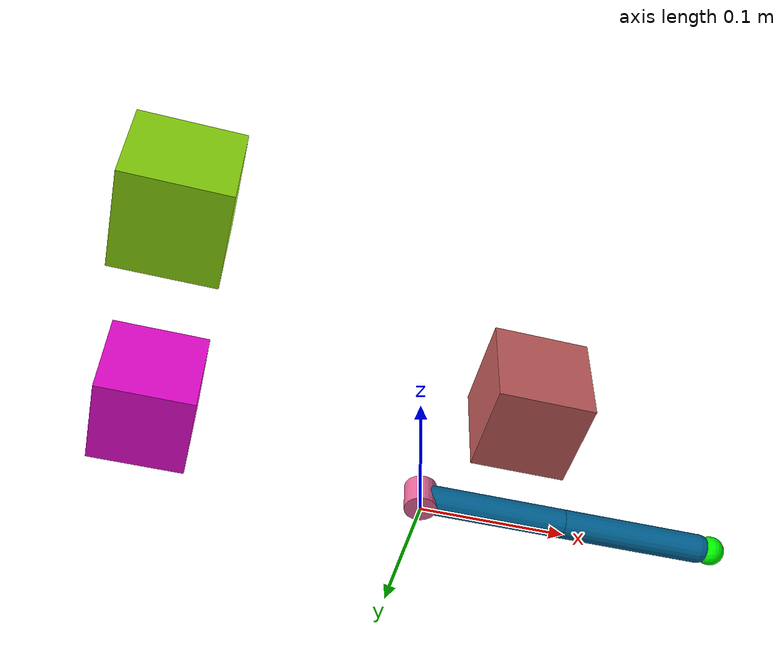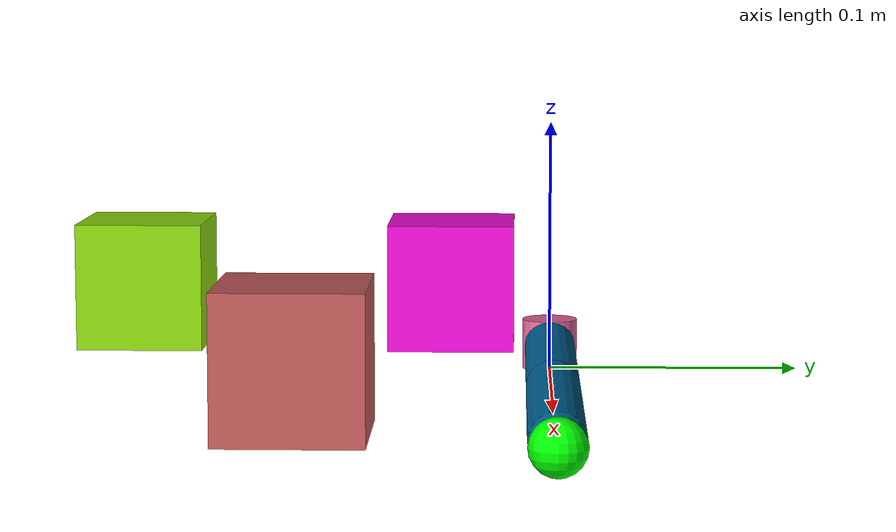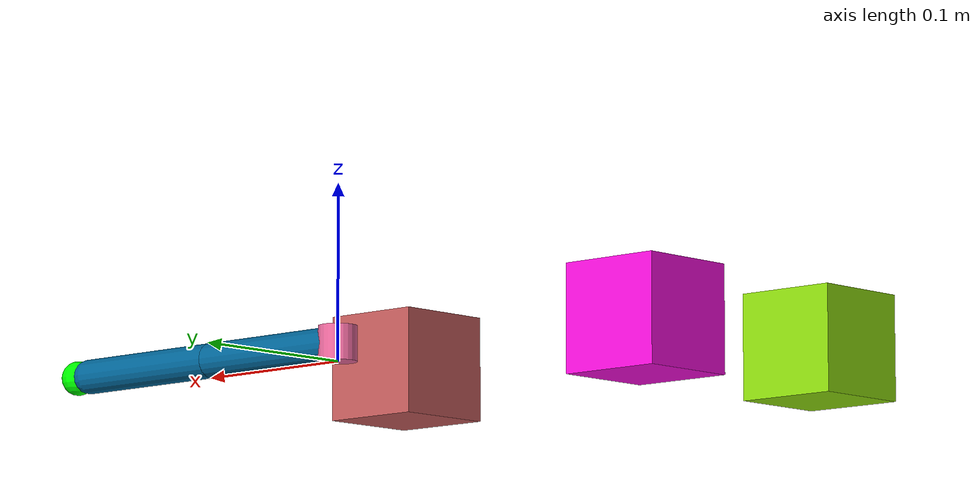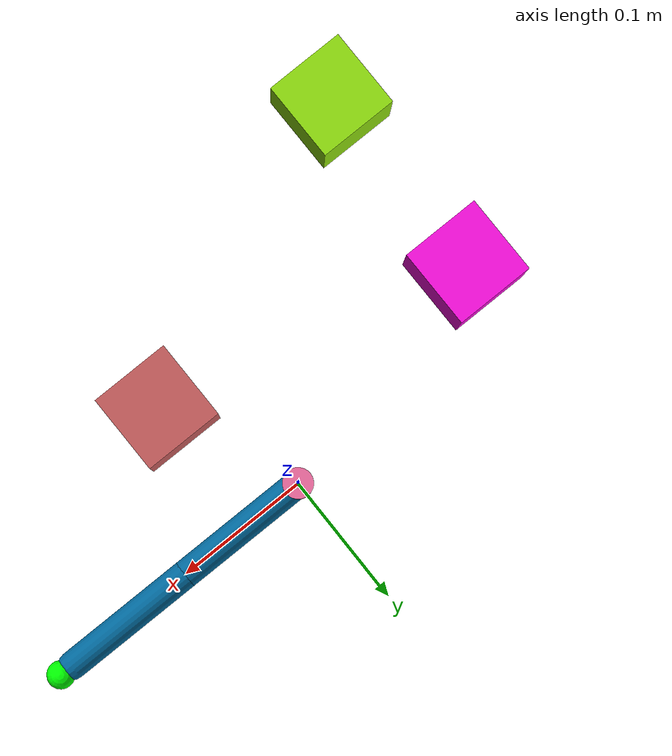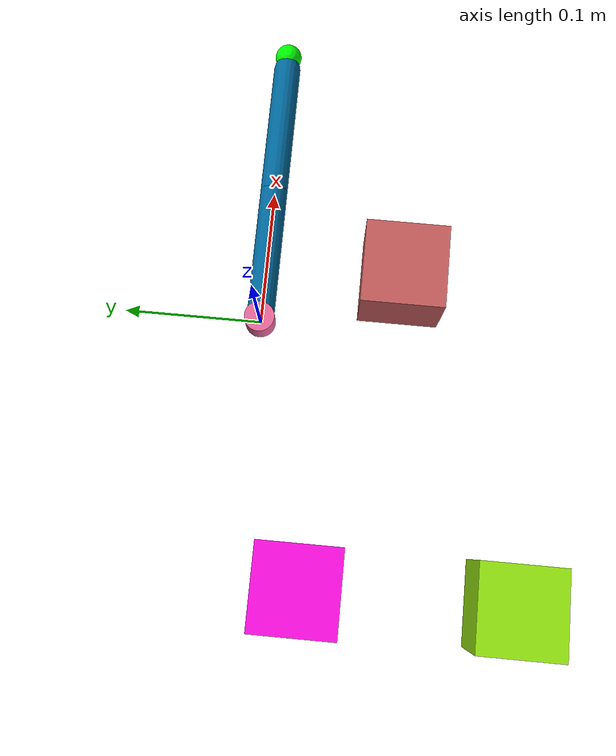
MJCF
<mujoco model="reacher">
	<compiler inertiafromgeom="true" angle="radian"/>
	<default >
		<joint armature="1" damping="1" limited="true"/>
		<geom contype="0" friction="1 0.1 0.1" rgba="0.7 0.7 0 1"/>
	</default>
	<option integrator="RK4" gravity="0 0 -9.81" timestep="0.01"/>
	<worldbody >
		<geom conaffinity="0" name="root" contype="0" fromto="0 0 0 0 0 0.02" rgba="0.9 0.4 0.6 1" type="cylinder" size=".011"/>
		<body name="body0" pos="0 0 .01">
			<geom name="link0" type="capsule" fromto="0 0 0 0.1 0 0" rgba="0.0 0.4 0.6 1.0" size=".01"/>
			<joint limited="true" name="joint0" pos="0 0 0" range="-3.14 3.14" type="hinge" axis="0 0 1"/>
			<body name="body1" pos="0.1 0 0">
				<joint limited="true" name="joint1" pos="0 0 0" range="-3.0 3.0" type="hinge" axis="0 0 1"/>
				<geom name="link1" type="capsule" fromto="0 0 0 0.1 0 0" rgba="0.0 0.4 0.6 1.0" size=".01"/>
				<body name="fingertip" pos="0.11 0 0">
					<site pos="0 0 0" name="fingertip" size="0.01"/>
					<geom name="fingertip" pos="0 0 0" contype="0" rgba="0 1 0 1" type="sphere" size=".01"/>
				</body>
			</body>
		</body>
		<body name="target" pos="-0.185661849932 -0.0446880500791 0.01">
			<geom conaffinity="0" density="0.00001" contype="0" rgba="0.95 0.05 0.85 1.0" type="box" size="0.03 0.03 0.03"/>
			<site pos="0 0 0" name="target" size="0.01"/>
		</body>
		<body name="cube_0" pos="0.0430320054281 -0.100735666523 0.01">
			<geom conaffinity="0" density="0.00001" contype="0" rgba="0.75 0.35 0.35 1.0" type="box" size="0.03 0.03 0.03"/>
		</body>
		<body name="cube_1" pos="-0.185503473835 -0.19330211728 0.01">
			<geom conaffinity="0" density="0.00001" contype="0" rgba="0.55 0.85 0.05 1.0" type="box" size="0.03 0.03 0.03"/>
		</body>
	</worldbody>
	<actuator >
		<motor ctrllimited="true" joint="joint0" ctrlrange="-1.0 1.0" gear="200.0"/>
		<motor ctrllimited="true" joint="joint1" ctrlrange="-1.0 1.0" gear="200.0"/>
	</actuator>
</mujoco>
